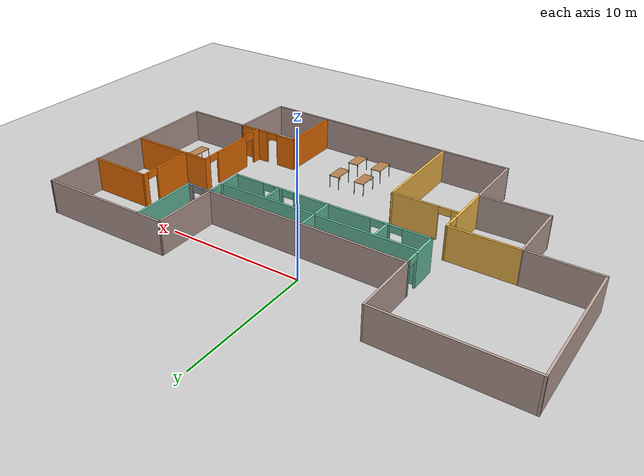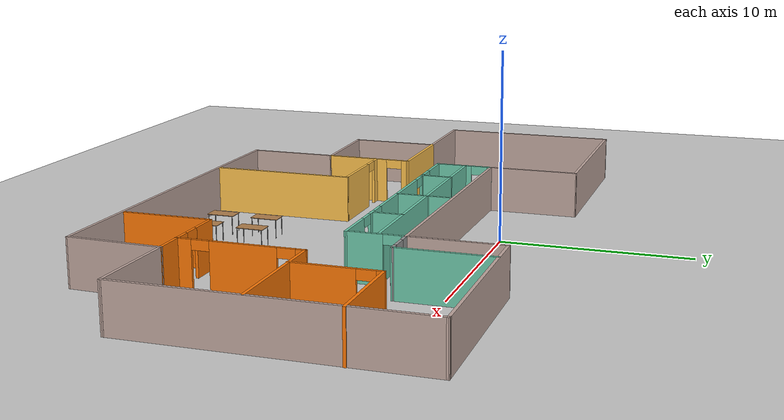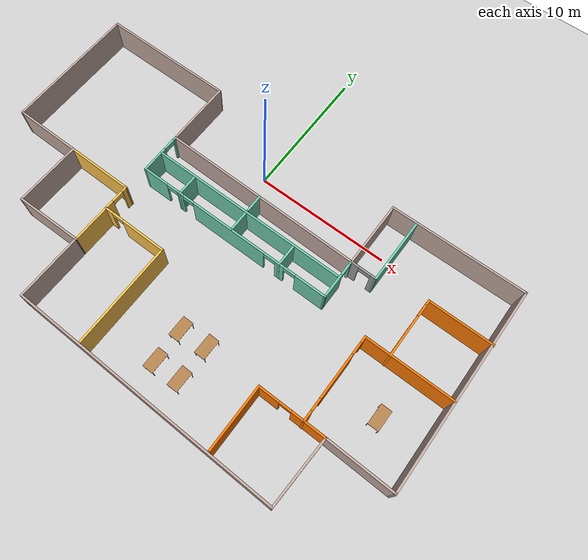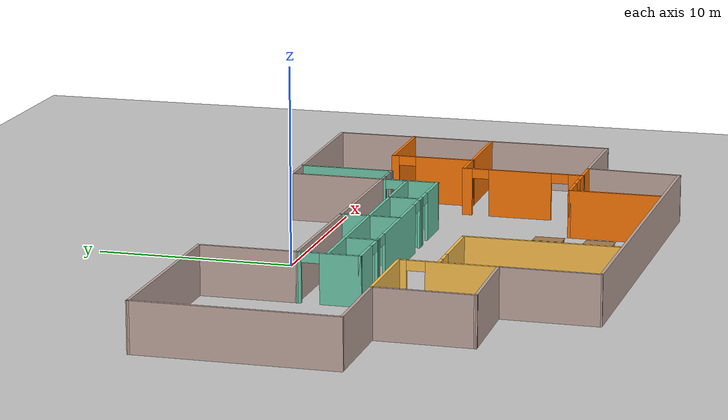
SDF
<sdf version="1.6">
 <world name="default">
  <model name="ground_plane">
   <static>1</static>
   <link name="link">
    <collision name="collision">
     <geometry><plane><normal>0 0 1</normal><size>100 100</size></plane></geometry>
     <surface>
      <contact><collide_bitmask>65535</collide_bitmask></contact>
      <friction><ode><mu>100</mu><mu2>50</mu2></ode></friction>
     </surface>
    </collision>
    <visual name="visual">
     <cast_shadows>0</cast_shadows>
     <geometry><plane><normal>0 0 1</normal><size>100 100</size></plane></geometry>
     <material>
      <script><uri>file://media/materials/scripts/gazebo.material</uri><name>Gazebo/Grey</name></script>
     </material>
    </visual>
   </link>
  </model>
  <model name="Building">
   <pose>1.3137 -7.11076 0 0 -0 0</pose>
   <link name="Wall_0">
    <collision name="Wall_0_Collision">
     <geometry><box><size>10 0.15 2.5</size></box></geometry>
     <pose>0 0 1.25 0 -0 0</pose>
    </collision>
    <visual name="Wall_0_Visual">
     <pose>0 0 1.25 0 -0 0</pose>
     <geometry><box><size>10 0.15 2.5</size></box></geometry>
     <material>
      <script><uri>file://media/materials/scripts/gazebo.material</uri><name>Gazebo/Grey</name></script>
      <ambient>0.760784 0.662745 0.627451 1</ambient>
     </material>
     <meta><layer>0</layer></meta>
    </visual>
    <pose>-12.3733 9.85668 0 0 0 -0.001793</pose>
   </link>
   <link name="Wall_1">
    <collision name="Wall_1_Collision">
     <geometry><box><size>5 0.15 2.5</size></box></geometry>
     <pose>0 0 1.25 0 -0 0</pose>
    </collision>
    <visual name="Wall_1_Visual">
     <pose>0 0 1.25 0 -0 0</pose>
     <geometry><box><size>5 0.15 2.5</size></box></geometry>
     <material>
      <script><uri>file://media/materials/scripts/gazebo.material</uri><name>Gazebo/Grey</name></script>
      <ambient>0.760784 0.662745 0.627451 1</ambient>
     </material>
     <meta><layer>0</layer></meta>
    </visual>
    <pose>-7.44769 7.42291 0 0 0 -1.57056</pose>
   </link>
   <link name="Wall_10">
    <collision name="Wall_10_Collision">
     <geometry><box><size>4.99971 0.15 2.5</size></box></geometry>
     <pose>0 0 1.25 0 -0 0</pose>
    </collision>
    <visual name="Wall_10_Visual">
     <pose>0 0 1.25 0 -0 0</pose>
     <geometry><box><size>4.99971 0.15 2.5</size></box></geometry>
     <material>
      <script><uri>file://media/materials/scripts/gazebo.material</uri><name>Gazebo/Grey</name></script>
      <ambient>0.760784 0.662745 0.627451 1</ambient>
     </material>
     <meta><layer>0</layer></meta>
    </visual>
    <pose>-10.0229 -4.78917 0 0 0 -3.1229</pose>
   </link>
   <link name="Wall_11">
    <collision name="Wall_11_Collision">
     <geometry><box><size>5 0.15 2.5</size></box></geometry>
     <pose>0 0 1.25 0 -0 0</pose>
    </collision>
    <visual name="Wall_11_Visual">
     <pose>0 0 1.25 0 -0 0</pose>
     <geometry><box><size>5 0.15 2.5</size></box></geometry>
     <material>
      <script><uri>file://media/materials/scripts/gazebo.material</uri><name>Gazebo/Grey</name></script>
      <ambient>0.760784 0.662745 0.627451 1</ambient>
     </material>
     <meta><layer>0</layer></meta>
    </visual>
    <pose>-12.4242 -2.40949 0 0 -0 1.56126</pose>
   </link>
   <link name="Wall_12">
    <collision name="Wall_12_Collision">
     <geometry><box><size>5 0.15 2.5</size></box></geometry>
     <pose>0 0 1.25 0 -0 0</pose>
    </collision>
    <visual name="Wall_12_Visual">
     <pose>0 0 1.25 0 -0 0</pose>
     <geometry><box><size>5 0.15 2.5</size></box></geometry>
     <material>
      <script><uri>file://media/materials/scripts/gazebo.material</uri><name>Gazebo/Grey</name></script>
      <ambient>0.760784 0.662745 0.627451 1</ambient>
     </material>
     <meta><layer>0</layer></meta>
    </visual>
    <pose>-14.826 0.015509 0 0 -0 3.14159</pose>
   </link>
   <link name="Wall_13">
    <collision name="Wall_13_Collision">
     <geometry><box><size>10.001 0.15 2.5</size></box></geometry>
     <pose>0 0 1.25 0 -0 0</pose>
    </collision>
    <visual name="Wall_13_Visual">
     <pose>0 0 1.25 0 -0 0</pose>
     <geometry><box><size>10.001 0.15 2.5</size></box></geometry>
     <material>
      <script><uri>file://media/materials/scripts/gazebo.material</uri><name>Gazebo/Grey</name></script>
      <ambient>0.760784 0.662745 0.627451 1</ambient>
     </material>
     <meta><layer>0</layer></meta>
    </visual>
    <pose>-17.2978 4.94051 0 0 -0 1.57089</pose>
   </link>
   <link name="Wall_15">
    <collision name="Wall_15_Collision">
     <geometry><box><size>5 0.15 2.5</size></box></geometry>
     <pose>0 0 1.25 0 -0 0</pose>
    </collision>
    <visual name="Wall_15_Visual">
     <pose>0 0 1.25 0 -0 0</pose>
     <geometry><box><size>5 0.15 2.5</size></box></geometry>
     <material>
      <script><uri>file://media/materials/scripts/gazebo.material</uri><name>Gazebo/Grey</name></script>
      <ambient>1 0.764706 0.305882 1</ambient>
     </material>
     <meta><layer>0</layer></meta>
    </visual>
    <pose>-9.97604 0.015509 0 0 -0 0</pose>
   </link>
   <link name="Wall_16">
    <pose>-7.57474 -2.36417 0 0 0 -1.58075</pose>
    <visual name="Wall_16_Visual_0">
     <pose>-2.22457 0 1.25 0 -0 0</pose>
     <geometry><box><size>0.460463 0.15 2.5</size></box></geometry>
     <material>
      <script><uri>file://media/materials/scripts/gazebo.material</uri><name>Gazebo/Grey</name></script>
      <ambient>1 0.764706 0.305882 1</ambient>
     </material>
     <meta><layer>0</layer></meta>
    </visual>
    <collision name="Wall_16_Collision_0">
     <geometry><box><size>0.460463 0.15 2.5</size></box></geometry>
     <pose>-2.22457 0 1.25 0 -0 0</pose>
    </collision>
    <visual name="Wall_16_Visual_1">
     <pose>0.680232 0 1.25 0 -0 0</pose>
     <geometry><box><size>3.54913 0.15 2.5</size></box></geometry>
     <material>
      <script><uri>file://media/materials/scripts/gazebo.material</uri><name>Gazebo/Grey</name></script>
      <ambient>1 0.764706 0.305882 1</ambient>
     </material>
     <meta><layer>0</layer></meta>
    </visual>
    <collision name="Wall_16_Collision_1">
     <geometry><box><size>3.54913 0.15 2.5</size></box></geometry>
     <pose>0.680232 0 1.25 0 -0 0</pose>
    </collision>
    <visual name="Wall_16_Visual_2">
     <pose>-1.54433 0 2.25 0 -0 0</pose>
     <geometry><box><size>0.9 0.15 0.5</size></box></geometry>
     <material>
      <script><uri>file://media/materials/scripts/gazebo.material</uri><name>Gazebo/Grey</name></script>
      <ambient>1 0.764706 0.305882 1</ambient>
     </material>
     <meta><layer>0</layer></meta>
    </visual>
    <collision name="Wall_16_Collision_2">
     <geometry><box><size>0.9 0.15 0.5</size></box></geometry>
     <pose>-1.54433 0 2.25 0 -0 0</pose>
    </collision>
   </link>
   <link name="Wall_18">
    <pose>-5.11415 -1.91143 0 0 -0 0</pose>
    <visual name="Wall_18_Visual_0">
     <pose>-2.18036 0 1.25 0 -0 0</pose>
     <geometry><box><size>0.639275 0.15 2.5</size></box></geometry>
     <material>
      <script><uri>file://media/materials/scripts/gazebo.material</uri><name>Gazebo/Grey</name></script>
      <ambient>1 0.764706 0.305882 1</ambient>
     </material>
     <meta><layer>0</layer></meta>
    </visual>
    <collision name="Wall_18_Collision_0">
     <geometry><box><size>0.639275 0.15 2.5</size></box></geometry>
     <pose>-2.18036 0 1.25 0 -0 0</pose>
    </collision>
    <visual name="Wall_18_Visual_1">
     <pose>0.769638 0 1.25 0 -0 0</pose>
     <geometry><box><size>3.46073 0.15 2.5</size></box></geometry>
     <material>
      <script><uri>file://media/materials/scripts/gazebo.material</uri><name>Gazebo/Grey</name></script>
      <ambient>1 0.764706 0.305882 1</ambient>
     </material>
     <meta><layer>0</layer></meta>
    </visual>
    <collision name="Wall_18_Collision_1">
     <geometry><box><size>3.46073 0.15 2.5</size></box></geometry>
     <pose>0.769638 0 1.25 0 -0 0</pose>
    </collision>
    <visual name="Wall_18_Visual_2">
     <pose>-1.41073 0 2.25 0 -0 0</pose>
     <geometry><box><size>0.9 0.15 0.5</size></box></geometry>
     <material>
      <script><uri>file://media/materials/scripts/gazebo.material</uri><name>Gazebo/Grey</name></script>
      <ambient>1 0.764706 0.305882 1</ambient>
     </material>
     <meta><layer>0</layer></meta>
    </visual>
    <collision name="Wall_18_Collision_2">
     <geometry><box><size>0.9 0.15 0.5</size></box></geometry>
     <pose>-1.41073 0 2.25 0 -0 0</pose>
    </collision>
   </link>
   <link name="Wall_19">
    <collision name="Wall_19_Collision">
     <geometry><box><size>7.75 0.15 2.5</size></box></geometry>
     <pose>0 0 1.25 0 -0 0</pose>
    </collision>
    <visual name="Wall_19_Visual">
     <pose>0 0 1.25 0 -0 0</pose>
     <geometry><box><size>7.75 0.15 2.5</size></box></geometry>
     <material>
      <script><uri>file://media/materials/scripts/gazebo.material</uri><name>Gazebo/Grey</name></script>
      <ambient>1 0.764706 0.305882 1</ambient>
     </material>
     <meta><layer>0</layer></meta>
    </visual>
    <pose>-2.68915 -5.71143 0 0 0 -1.5708</pose>
   </link>
   <link name="Wall_2">
    <collision name="Wall_2_Collision">
     <geometry><box><size>15 0.15 2.5</size></box></geometry>
     <pose>0 0 1.25 0 -0 0</pose>
    </collision>
    <visual name="Wall_2_Visual">
     <pose>0 0 1.25 0 -0 0</pose>
     <geometry><box><size>15 0.15 2.5</size></box></geometry>
     <material>
      <script><uri>file://media/materials/scripts/gazebo.material</uri><name>Gazebo/Grey</name></script>
      <ambient>0.760784 0.662745 0.627451 1</ambient>
     </material>
     <meta><layer>0</layer></meta>
    </visual>
    <pose>-0.022584 4.91485 0 0 0 -0.011195</pose>
   </link>
   <link name="Wall_21">
    <pose>9.97569 -5.01695 0 0 -0 3.14159</pose>
    <visual name="Wall_21_Visual_0">
     <pose>-1.23973 0 1.25 0 -0 0</pose>
     <geometry><box><size>2.52055 0.15 2.5</size></box></geometry>
     <material>
      <script><uri>file://media/materials/scripts/gazebo.material</uri><name>Gazebo/Grey</name></script>
      <ambient>0.996078 0.47451 0.0196078 1</ambient>
     </material>
     <meta><layer>0</layer></meta>
    </visual>
    <collision name="Wall_21_Collision_0">
     <geometry><box><size>2.52055 0.15 2.5</size></box></geometry>
     <pose>-1.23973 0 1.25 0 -0 0</pose>
    </collision>
    <visual name="Wall_21_Visual_1">
     <pose>1.71027 0 1.25 0 -0 0</pose>
     <geometry><box><size>1.57945 0.15 2.5</size></box></geometry>
     <material>
      <script><uri>file://media/materials/scripts/gazebo.material</uri><name>Gazebo/Grey</name></script>
      <ambient>0.996078 0.47451 0.0196078 1</ambient>
     </material>
     <meta><layer>0</layer></meta>
    </visual>
    <collision name="Wall_21_Collision_1">
     <geometry><box><size>1.57945 0.15 2.5</size></box></geometry>
     <pose>1.71027 0 1.25 0 -0 0</pose>
    </collision>
    <visual name="Wall_21_Visual_2">
     <pose>0.470546 0 2.25 0 -0 0</pose>
     <geometry><box><size>0.9 0.15 0.5</size></box></geometry>
     <material>
      <script><uri>file://media/materials/scripts/gazebo.material</uri><name>Gazebo/Grey</name></script>
      <ambient>0.996078 0.47451 0.0196078 1</ambient>
     </material>
     <meta><layer>0</layer></meta>
    </visual>
    <collision name="Wall_21_Collision_2">
     <geometry><box><size>0.9 0.15 0.5</size></box></geometry>
     <pose>0.470546 0 2.25 0 -0 0</pose>
    </collision>
   </link>
   <link name="Wall_22">
    <collision name="Wall_22_Collision">
     <geometry><box><size>4.75 0.15 2.5</size></box></geometry>
     <pose>0 0 1.25 0 -0 0</pose>
    </collision>
    <visual name="Wall_22_Visual">
     <pose>0 0 1.25 0 -0 0</pose>
     <geometry><box><size>4.75 0.15 2.5</size></box></geometry>
     <material>
      <script><uri>file://media/materials/scripts/gazebo.material</uri><name>Gazebo/Grey</name></script>
      <ambient>0.996078 0.47451 0.0196078 1</ambient>
     </material>
     <meta><layer>0</layer></meta>
    </visual>
    <pose>7.55069 -7.31695 0 0 0 -1.5708</pose>
   </link>
   <link name="Wall_24">
    <pose>-7.44712 3.44797 0 0 0 -1.5708</pose>
    <visual name="Wall_24_Visual_0">
     <pose>-1.47429 0 1.25 0 -0 0</pose>
     <geometry><box><size>0.301423 0.15 2.5</size></box></geometry>
     <material>
      <script><uri>file://media/materials/scripts/gazebo.material</uri><name>Gazebo/Grey</name></script>
      <ambient>0.435294 0.796078 0.67451 1</ambient>
     </material>
     <meta><layer>0</layer></meta>
    </visual>
    <collision name="Wall_24_Collision_0">
     <geometry><box><size>0.301423 0.15 2.5</size></box></geometry>
     <pose>-1.47429 0 1.25 0 -0 0</pose>
    </collision>
    <visual name="Wall_24_Visual_1">
     <pose>0.600711 0 1.25 0 -0 0</pose>
     <geometry><box><size>2.04858 0.15 2.5</size></box></geometry>
     <material>
      <script><uri>file://media/materials/scripts/gazebo.material</uri><name>Gazebo/Grey</name></script>
      <ambient>0.435294 0.796078 0.67451 1</ambient>
     </material>
     <meta><layer>0</layer></meta>
    </visual>
    <collision name="Wall_24_Collision_1">
     <geometry><box><size>2.04858 0.15 2.5</size></box></geometry>
     <pose>0.600711 0 1.25 0 -0 0</pose>
    </collision>
    <visual name="Wall_24_Visual_2">
     <pose>-0.873577 0 2.25 0 -0 0</pose>
     <geometry><box><size>0.9 0.15 0.5</size></box></geometry>
     <material>
      <script><uri>file://media/materials/scripts/gazebo.material</uri><name>Gazebo/Grey</name></script>
      <ambient>0.435294 0.796078 0.67451 1</ambient>
     </material>
     <meta><layer>0</layer></meta>
    </visual>
    <collision name="Wall_24_Collision_2">
     <geometry><box><size>0.9 0.15 0.5</size></box></geometry>
     <pose>-0.873577 0 2.25 0 -0 0</pose>
    </collision>
   </link>
   <link name="Wall_25">
    <pose>-0.022119 1.89797 0 0 -0 0</pose>
    <visual name="Wall_25_Visual_0">
     <pose>-6.49636 0 1.25 0 -0 0</pose>
     <geometry><box><size>2.00728 0.15 2.5</size></box></geometry>
     <material>
      <script><uri>file://media/materials/scripts/gazebo.material</uri><name>Gazebo/Grey</name></script>
      <ambient>0.435294 0.796078 0.67451 1</ambient>
     </material>
     <meta><layer>0</layer></meta>
    </visual>
    <collision name="Wall_25_Collision_0">
     <geometry><box><size>2.00728 0.15 2.5</size></box></geometry>
     <pose>-6.49636 0 1.25 0 -0 0</pose>
    </collision>
    <visual name="Wall_25_Visual_1">
     <pose>-4.35832 0 1.25 0 -0 0</pose>
     <geometry><box><size>0.468788 0.15 2.5</size></box></geometry>
     <material>
      <script><uri>file://media/materials/scripts/gazebo.material</uri><name>Gazebo/Grey</name></script>
      <ambient>0.435294 0.796078 0.67451 1</ambient>
     </material>
     <meta><layer>0</layer></meta>
    </visual>
    <collision name="Wall_25_Collision_1">
     <geometry><box><size>0.468788 0.15 2.5</size></box></geometry>
     <pose>-4.35832 0 1.25 0 -0 0</pose>
    </collision>
    <visual name="Wall_25_Visual_2">
     <pose>-0.282378 0 1.25 0 -0 0</pose>
     <geometry><box><size>5.8831 0.15 2.5</size></box></geometry>
     <material>
      <script><uri>file://media/materials/scripts/gazebo.material</uri><name>Gazebo/Grey</name></script>
      <ambient>0.435294 0.796078 0.67451 1</ambient>
     </material>
     <meta><layer>0</layer></meta>
    </visual>
    <collision name="Wall_25_Collision_2">
     <geometry><box><size>5.8831 0.15 2.5</size></box></geometry>
     <pose>-0.282378 0 1.25 0 -0 0</pose>
    </collision>
    <visual name="Wall_25_Visual_3">
     <pose>3.90003 0 1.25 0 -0 0</pose>
     <geometry><box><size>0.68171 0.15 2.5</size></box></geometry>
     <material>
      <script><uri>file://media/materials/scripts/gazebo.material</uri><name>Gazebo/Grey</name></script>
      <ambient>0.435294 0.796078 0.67451 1</ambient>
     </material>
     <meta><layer>0</layer></meta>
    </visual>
    <collision name="Wall_25_Collision_3">
     <geometry><box><size>0.68171 0.15 2.5</size></box></geometry>
     <pose>3.90003 0 1.25 0 -0 0</pose>
    </collision>
    <visual name="Wall_25_Visual_4">
     <pose>6.32044 0 1.25 0 -0 0</pose>
     <geometry><box><size>2.35912 0.15 2.5</size></box></geometry>
     <material>
      <script><uri>file://media/materials/scripts/gazebo.material</uri><name>Gazebo/Grey</name></script>
      <ambient>0.435294 0.796078 0.67451 1</ambient>
     </material>
     <meta><layer>0</layer></meta>
    </visual>
    <collision name="Wall_25_Collision_4">
     <geometry><box><size>2.35912 0.15 2.5</size></box></geometry>
     <pose>6.32044 0 1.25 0 -0 0</pose>
    </collision>
    <visual name="Wall_25_Visual_5">
     <pose>-5.04272 0 2.25 0 -0 0</pose>
     <geometry><box><size>0.9 0.15 0.5</size></box></geometry>
     <material>
      <script><uri>file://media/materials/scripts/gazebo.material</uri><name>Gazebo/Grey</name></script>
      <ambient>0.435294 0.796078 0.67451 1</ambient>
     </material>
     <meta><layer>0</layer></meta>
    </visual>
    <collision name="Wall_25_Collision_5">
     <geometry><box><size>0.9 0.15 0.5</size></box></geometry>
     <pose>-5.04272 0 2.25 0 -0 0</pose>
    </collision>
    <visual name="Wall_25_Visual_6">
     <pose>-3.67393 0 2.25 0 -0 0</pose>
     <geometry><box><size>0.9 0.15 0.5</size></box></geometry>
     <material>
      <script><uri>file://media/materials/scripts/gazebo.material</uri><name>Gazebo/Grey</name></script>
      <ambient>0.435294 0.796078 0.67451 1</ambient>
     </material>
     <meta><layer>0</layer></meta>
    </visual>
    <collision name="Wall_25_Collision_6">
     <geometry><box><size>0.9 0.15 0.5</size></box></geometry>
     <pose>-3.67393 0 2.25 0 -0 0</pose>
    </collision>
    <visual name="Wall_25_Visual_7">
     <pose>3.10917 0 2.25 0 -0 0</pose>
     <geometry><box><size>0.9 0.15 0.5</size></box></geometry>
     <material>
      <script><uri>file://media/materials/scripts/gazebo.material</uri><name>Gazebo/Grey</name></script>
      <ambient>0.435294 0.796078 0.67451 1</ambient>
     </material>
     <meta><layer>0</layer></meta>
    </visual>
    <collision name="Wall_25_Collision_7">
     <geometry><box><size>0.9 0.15 0.5</size></box></geometry>
     <pose>3.10917 0 2.25 0 -0 0</pose>
    </collision>
    <visual name="Wall_25_Visual_8">
     <pose>4.69088 0 2.25 0 -0 0</pose>
     <geometry><box><size>0.9 0.15 0.5</size></box></geometry>
     <material>
      <script><uri>file://media/materials/scripts/gazebo.material</uri><name>Gazebo/Grey</name></script>
      <ambient>0.435294 0.796078 0.67451 1</ambient>
     </material>
     <meta><layer>0</layer></meta>
    </visual>
    <collision name="Wall_25_Collision_8">
     <geometry><box><size>0.9 0.15 0.5</size></box></geometry>
     <pose>4.69088 0 2.25 0 -0 0</pose>
    </collision>
   </link>
   <link name="Wall_26">
    <pose>7.40242 3.36485 0 0 -0 1.57111</pose>
    <visual name="Wall_26_Visual_0">
     <pose>-0.593608 0 1.25 0 -0 0</pose>
     <geometry><box><size>1.89655 0.15 2.5</size></box></geometry>
     <material>
      <script><uri>file://media/materials/scripts/gazebo.material</uri><name>Gazebo/Grey</name></script>
      <ambient>0.435294 0.796078 0.67451 1</ambient>
     </material>
     <meta><layer>0</layer></meta>
    </visual>
    <collision name="Wall_26_Collision_0">
     <geometry><box><size>1.89655 0.15 2.5</size></box></geometry>
     <pose>-0.593608 0 1.25 0 -0 0</pose>
    </collision>
    <visual name="Wall_26_Visual_1">
     <pose>1.39827 0 1.25 0 -0 0</pose>
     <geometry><box><size>0.287215 0.15 2.5</size></box></geometry>
     <material>
      <script><uri>file://media/materials/scripts/gazebo.material</uri><name>Gazebo/Grey</name></script>
      <ambient>0.435294 0.796078 0.67451 1</ambient>
     </material>
     <meta><layer>0</layer></meta>
    </visual>
    <collision name="Wall_26_Collision_1">
     <geometry><box><size>0.287215 0.15 2.5</size></box></geometry>
     <pose>1.39827 0 1.25 0 -0 0</pose>
    </collision>
    <visual name="Wall_26_Visual_2">
     <pose>0.804666 0 2.25 0 -0 0</pose>
     <geometry><box><size>0.9 0.15 0.5</size></box></geometry>
     <material>
      <script><uri>file://media/materials/scripts/gazebo.material</uri><name>Gazebo/Grey</name></script>
      <ambient>0.435294 0.796078 0.67451 1</ambient>
     </material>
     <meta><layer>0</layer></meta>
    </visual>
    <collision name="Wall_26_Collision_2">
     <geometry><box><size>0.9 0.15 0.5</size></box></geometry>
     <pose>0.804666 0 2.25 0 -0 0</pose>
    </collision>
   </link>
   <link name="Wall_28">
    <collision name="Wall_28_Collision">
     <geometry><box><size>14.75 0.15 2.5</size></box></geometry>
     <pose>0 0 1.25 0 -0 0</pose>
    </collision>
    <visual name="Wall_28_Visual">
     <pose>0 0 1.25 0 -0 0</pose>
     <geometry><box><size>14.75 0.15 2.5</size></box></geometry>
     <material>
      <script><uri>file://media/materials/scripts/gazebo.material</uri><name>Gazebo/Grey</name></script>
      <ambient>0.435294 0.796078 0.67451 1</ambient>
     </material>
     <meta><layer>0</layer></meta>
    </visual>
    <pose>-0.074889 3.49771 0 0 -0 0</pose>
   </link>
   <link name="Wall_3">
    <collision name="Wall_3_Collision">
     <geometry><box><size>4.977 0.15 2.5</size></box></geometry>
     <pose>0 0 1.25 0 -0 0</pose>
    </collision>
    <visual name="Wall_3_Visual">
     <pose>0 0 1.25 0 -0 0</pose>
     <geometry><box><size>4.977 0.15 2.5</size></box></geometry>
     <material>
      <script><uri>file://media/materials/scripts/gazebo.material</uri><name>Gazebo/Grey</name></script>
      <ambient>0.760784 0.662745 0.627451 1</ambient>
     </material>
     <meta><layer>0</layer></meta>
    </visual>
    <pose>7.40161 7.24525 0 0 -0 1.57094</pose>
   </link>
   <link name="Wall_30">
    <collision name="Wall_30_Collision">
     <geometry><box><size>1.5 0.15 2.5</size></box></geometry>
     <pose>0 0 1.25 0 -0 0</pose>
    </collision>
    <visual name="Wall_30_Visual">
     <pose>0 0 1.25 0 -0 0</pose>
     <geometry><box><size>1.5 0.15 2.5</size></box></geometry>
     <material>
      <script><uri>file://media/materials/scripts/gazebo.material</uri><name>Gazebo/Grey</name></script>
      <ambient>0.435294 0.796078 0.67451 1</ambient>
     </material>
     <meta><layer>0</layer></meta>
    </visual>
    <pose>-0.057706 4.22986 0 0 0 -1.5708</pose>
   </link>
   <link name="Wall_32">
    <collision name="Wall_32_Collision">
     <geometry><box><size>1.75 0.15 2.5</size></box></geometry>
     <pose>0 0 1.25 0 -0 0</pose>
    </collision>
    <visual name="Wall_32_Visual">
     <pose>0 0 1.25 0 -0 0</pose>
     <geometry><box><size>1.75 0.15 2.5</size></box></geometry>
     <material>
      <script><uri>file://media/materials/scripts/gazebo.material</uri><name>Gazebo/Grey</name></script>
      <ambient>0.435294 0.796078 0.67451 1</ambient>
     </material>
     <meta><layer>0</layer></meta>
    </visual>
    <pose>-4.41987 2.69771 0 0 0 -1.5708</pose>
   </link>
   <link name="Wall_36">
    <collision name="Wall_36_Collision">
     <geometry><box><size>1.75 0.15 2.5</size></box></geometry>
     <pose>0 0 1.25 0 -0 0</pose>
    </collision>
    <visual name="Wall_36_Visual">
     <pose>0 0 1.25 0 -0 0</pose>
     <geometry><box><size>1.75 0.15 2.5</size></box></geometry>
     <material>
      <script><uri>file://media/materials/scripts/gazebo.material</uri><name>Gazebo/Grey</name></script>
      <ambient>0.435294 0.796078 0.67451 1</ambient>
     </material>
     <meta><layer>0</layer></meta>
    </visual>
    <pose>-0.057706 2.75486 0 0 0 -1.5708</pose>
   </link>
   <link name="Wall_38">
    <collision name="Wall_38_Collision">
     <geometry><box><size>1.75 0.15 2.5</size></box></geometry>
     <pose>0 0 1.25 0 -0 0</pose>
    </collision>
    <visual name="Wall_38_Visual">
     <pose>0 0 1.25 0 -0 0</pose>
     <geometry><box><size>1.75 0.15 2.5</size></box></geometry>
     <material>
      <script><uri>file://media/materials/scripts/gazebo.material</uri><name>Gazebo/Grey</name></script>
      <ambient>0.435294 0.796078 0.67451 1</ambient>
     </material>
     <meta><layer>0</layer></meta>
    </visual>
    <pose>3.84532 2.68439 0 0 0 -1.5708</pose>
   </link>
   <link name="Wall_4">
    <collision name="Wall_4_Collision">
     <geometry><box><size>10 0.15 2.5</size></box></geometry>
     <pose>0 0 1.25 0 -0 0</pose>
    </collision>
    <visual name="Wall_4_Visual">
     <pose>0 0 1.25 0 -0 0</pose>
     <geometry><box><size>10 0.15 2.5</size></box></geometry>
     <material>
      <script><uri>file://media/materials/scripts/gazebo.material</uri><name>Gazebo/Grey</name></script>
      <ambient>0.760784 0.662745 0.627451 1</ambient>
     </material>
     <meta><layer>0</layer></meta>
    </visual>
    <pose>12.3258 9.71227 0 0 -0 0.010864</pose>
   </link>
   <link name="Wall_40">
    <collision name="Wall_40_Collision">
     <geometry><box><size>5 0.15 2.5</size></box></geometry>
     <pose>0 0 1.25 0 -0 0</pose>
    </collision>
    <visual name="Wall_40_Visual">
     <pose>0 0 1.25 0 -0 0</pose>
     <geometry><box><size>5 0.15 2.5</size></box></geometry>
     <material>
      <script><uri>file://media/materials/scripts/gazebo.material</uri><name>Gazebo/Grey</name></script>
      <ambient>0.435294 0.796078 0.67451 1</ambient>
     </material>
     <meta><layer>0</layer></meta>
    </visual>
    <pose>9.26532 7.23939 0 0 0 -1.5708</pose>
   </link>
   <link name="Wall_41">
    <pose>8.33363 4.82306 0 0 -0 3.13228</pose>
    <visual name="Wall_41_Visual_0">
     <pose>-0.781737 0 1.25 0 -0 0</pose>
     <geometry><box><size>0.449972 0.15 2.5</size></box></geometry>
     <material>
      <script><uri>file://media/materials/scripts/gazebo.material</uri><name>Gazebo/Grey</name></script>
      <ambient>1 1 1 1</ambient>
     </material>
     <meta><layer>0</layer></meta>
    </visual>
    <collision name="Wall_41_Collision_0">
     <geometry><box><size>0.449972 0.15 2.5</size></box></geometry>
     <pose>-0.781737 0 1.25 0 -0 0</pose>
    </collision>
    <visual name="Wall_41_Visual_1">
     <pose>0.674986 0 1.25 0 -0 0</pose>
     <geometry><box><size>0.663474 0.15 2.5</size></box></geometry>
     <material>
      <script><uri>file://media/materials/scripts/gazebo.material</uri><name>Gazebo/Grey</name></script>
      <ambient>1 1 1 1</ambient>
     </material>
     <meta><layer>0</layer></meta>
    </visual>
    <collision name="Wall_41_Collision_1">
     <geometry><box><size>0.663474 0.15 2.5</size></box></geometry>
     <pose>0.674986 0 1.25 0 -0 0</pose>
    </collision>
    <visual name="Wall_41_Visual_2">
     <pose>-0.106751 0 2.25 0 -0 0</pose>
     <geometry><box><size>0.9 0.15 0.5</size></box></geometry>
     <material>
      <script><uri>file://media/materials/scripts/gazebo.material</uri><name>Gazebo/Grey</name></script>
      <ambient>1 1 1 1</ambient>
     </material>
     <meta><layer>0</layer></meta>
    </visual>
    <collision name="Wall_41_Collision_2">
     <geometry><box><size>0.9 0.15 0.5</size></box></geometry>
     <pose>-0.106751 0 2.25 0 -0 0</pose>
    </collision>
   </link>
   <link name="Wall_43">
    <pose>10.8479 -1.87139 0 0 -0 1.5708</pose>
    <visual name="Wall_43_Visual_0">
     <pose>-2.82948 0 1.25 0 -0 0</pose>
     <geometry><box><size>0.841047 0.15 2.5</size></box></geometry>
     <material>
      <script><uri>file://media/materials/scripts/gazebo.material</uri><name>Gazebo/Grey</name></script>
      <ambient>0.996078 0.47451 0.0196078 1</ambient>
     </material>
     <meta><layer>0</layer></meta>
    </visual>
    <collision name="Wall_43_Collision_0">
     <geometry><box><size>0.841047 0.15 2.5</size></box></geometry>
     <pose>-2.82948 0 1.25 0 -0 0</pose>
    </collision>
    <visual name="Wall_43_Visual_1">
     <pose>0.155063 0 1.25 0 -0 0</pose>
     <geometry><box><size>3.32803 0.15 2.5</size></box></geometry>
     <material>
      <script><uri>file://media/materials/scripts/gazebo.material</uri><name>Gazebo/Grey</name></script>
      <ambient>0.996078 0.47451 0.0196078 1</ambient>
     </material>
     <meta><layer>0</layer></meta>
    </visual>
    <collision name="Wall_43_Collision_1">
     <geometry><box><size>3.32803 0.15 2.5</size></box></geometry>
     <pose>0.155063 0 1.25 0 -0 0</pose>
    </collision>
    <visual name="Wall_43_Visual_2">
     <pose>2.98454 0 1.25 0 -0 0</pose>
     <geometry><box><size>0.53092 0.15 2.5</size></box></geometry>
     <material>
      <script><uri>file://media/materials/scripts/gazebo.material</uri><name>Gazebo/Grey</name></script>
      <ambient>0.996078 0.47451 0.0196078 1</ambient>
     </material>
     <meta><layer>0</layer></meta>
    </visual>
    <collision name="Wall_43_Collision_2">
     <geometry><box><size>0.53092 0.15 2.5</size></box></geometry>
     <pose>2.98454 0 1.25 0 -0 0</pose>
    </collision>
    <visual name="Wall_43_Visual_3">
     <pose>-1.95895 0 2.25 0 -0 0</pose>
     <geometry><box><size>0.9 0.15 0.5</size></box></geometry>
     <material>
      <script><uri>file://media/materials/scripts/gazebo.material</uri><name>Gazebo/Grey</name></script>
      <ambient>0.996078 0.47451 0.0196078 1</ambient>
     </material>
     <meta><layer>0</layer></meta>
    </visual>
    <collision name="Wall_43_Collision_3">
     <geometry><box><size>0.9 0.15 0.5</size></box></geometry>
     <pose>-1.95895 0 2.25 0 -0 0</pose>
    </collision>
    <visual name="Wall_43_Visual_4">
     <pose>2.26908 0 2.25 0 -0 0</pose>
     <geometry><box><size>0.9 0.15 0.5</size></box></geometry>
     <material>
      <script><uri>file://media/materials/scripts/gazebo.material</uri><name>Gazebo/Grey</name></script>
      <ambient>0.996078 0.47451 0.0196078 1</ambient>
     </material>
     <meta><layer>0</layer></meta>
    </visual>
    <collision name="Wall_43_Collision_4">
     <geometry><box><size>0.9 0.15 0.5</size></box></geometry>
     <pose>2.26908 0 2.25 0 -0 0</pose>
    </collision>
   </link>
   <link name="Wall_44">
    <collision name="Wall_44_Collision">
     <geometry><box><size>6.5 0.15 2.5</size></box></geometry>
     <pose>0 0 1.25 0 -0 0</pose>
    </collision>
    <visual name="Wall_44_Visual">
     <pose>0 0 1.25 0 -0 0</pose>
     <geometry><box><size>6.5 0.15 2.5</size></box></geometry>
     <material>
      <script><uri>file://media/materials/scripts/gazebo.material</uri><name>Gazebo/Grey</name></script>
      <ambient>0.996078 0.47451 0.0196078 1</ambient>
     </material>
     <meta><layer>0</layer></meta>
    </visual>
    <pose>14.0229 1.30361 0 0 -0 0</pose>
   </link>
   <link name="Wall_46">
    <pose>12.6984 3.44428 0 0 -0 1.5708</pose>
    <visual name="Wall_46_Visual_0">
     <pose>-0.652813 0 1.25 0 -0 0</pose>
     <geometry><box><size>3.19437 0.15 2.5</size></box></geometry>
     <material>
      <script><uri>file://media/materials/scripts/gazebo.material</uri><name>Gazebo/Grey</name></script>
      <ambient>0.996078 0.47451 0.0196078 1</ambient>
     </material>
     <meta><layer>0</layer></meta>
    </visual>
    <collision name="Wall_46_Collision_0">
     <geometry><box><size>3.19437 0.15 2.5</size></box></geometry>
     <pose>-0.652813 0 1.25 0 -0 0</pose>
    </collision>
    <visual name="Wall_46_Visual_1">
     <pose>2.04719 0 1.25 0 -0 0</pose>
     <geometry><box><size>0.405627 0.15 2.5</size></box></geometry>
     <material>
      <script><uri>file://media/materials/scripts/gazebo.material</uri><name>Gazebo/Grey</name></script>
      <ambient>0.996078 0.47451 0.0196078 1</ambient>
     </material>
     <meta><layer>0</layer></meta>
    </visual>
    <collision name="Wall_46_Collision_1">
     <geometry><box><size>0.405627 0.15 2.5</size></box></geometry>
     <pose>2.04719 0 1.25 0 -0 0</pose>
    </collision>
    <visual name="Wall_46_Visual_2">
     <pose>1.39437 0 2.25 0 -0 0</pose>
     <geometry><box><size>0.9 0.15 0.5</size></box></geometry>
     <material>
      <script><uri>file://media/materials/scripts/gazebo.material</uri><name>Gazebo/Grey</name></script>
      <ambient>0.996078 0.47451 0.0196078 1</ambient>
     </material>
     <meta><layer>0</layer></meta>
    </visual>
    <collision name="Wall_46_Collision_2">
     <geometry><box><size>0.9 0.15 0.5</size></box></geometry>
     <pose>1.39437 0 2.25 0 -0 0</pose>
    </collision>
   </link>
   <link name="Wall_47">
    <collision name="Wall_47_Collision">
     <geometry><box><size>4.75 0.15 2.5</size></box></geometry>
     <pose>0 0 1.25 0 -0 0</pose>
    </collision>
    <visual name="Wall_47_Visual">
     <pose>0 0 1.25 0 -0 0</pose>
     <geometry><box><size>4.75 0.15 2.5</size></box></geometry>
     <material>
      <script><uri>file://media/materials/scripts/gazebo.material</uri><name>Gazebo/Grey</name></script>
      <ambient>0.996078 0.47451 0.0196078 1</ambient>
     </material>
     <meta><layer>0</layer></meta>
    </visual>
    <pose>14.9984 5.61928 0 0 -0 0</pose>
   </link>
   <link name="Wall_5">
    <collision name="Wall_5_Collision">
     <geometry><box><size>15 0.15 2.5</size></box></geometry>
     <pose>0 0 1.25 0 -0 0</pose>
    </collision>
    <visual name="Wall_5_Visual">
     <pose>0 0 1.25 0 -0 0</pose>
     <geometry><box><size>15 0.15 2.5</size></box></geometry>
     <material>
      <script><uri>file://media/materials/scripts/gazebo.material</uri><name>Gazebo/Grey</name></script>
      <ambient>0.760784 0.662745 0.627451 1</ambient>
     </material>
     <meta><layer>0</layer></meta>
    </visual>
    <pose>17.2503 2.34085 0 0 0 -1.5708</pose>
   </link>
   <link name="Wall_6">
    <collision name="Wall_6_Collision">
     <geometry><box><size>5 0.15 2.5</size></box></geometry>
     <pose>0 0 1.25 0 -0 0</pose>
    </collision>
    <visual name="Wall_6_Visual">
     <pose>0 0 1.25 0 -0 0</pose>
     <geometry><box><size>5 0.15 2.5</size></box></geometry>
     <material>
      <script><uri>file://media/materials/scripts/gazebo.material</uri><name>Gazebo/Grey</name></script>
      <ambient>0.760784 0.662745 0.627451 1</ambient>
     </material>
     <meta><layer>0</layer></meta>
    </visual>
    <pose>14.8255 -5.05051 0 0 -0 3.12775</pose>
   </link>
   <link name="Wall_7">
    <collision name="Wall_7_Collision">
     <geometry><box><size>5 0.15 2.5</size></box></geometry>
     <pose>0 0 1.25 0 -0 0</pose>
    </collision>
    <visual name="Wall_7_Visual">
     <pose>0 0 1.25 0 -0 0</pose>
     <geometry><box><size>5 0.15 2.5</size></box></geometry>
     <material>
      <script><uri>file://media/materials/scripts/gazebo.material</uri><name>Gazebo/Grey</name></script>
      <ambient>0.760784 0.662745 0.627451 1</ambient>
     </material>
     <meta><layer>0</layer></meta>
    </visual>
    <pose>12.3037 -7.44001 0 0 0 -1.61079</pose>
   </link>
   <link name="Wall_8">
    <collision name="Wall_8_Collision">
     <geometry><box><size>20 0.15 2.5</size></box></geometry>
     <pose>0 0 1.25 0 -0 0</pose>
    </collision>
    <visual name="Wall_8_Visual">
     <pose>0 0 1.25 0 -0 0</pose>
     <geometry><box><size>20 0.15 2.5</size></box></geometry>
     <material>
      <script><uri>file://media/materials/scripts/gazebo.material</uri><name>Gazebo/Grey</name></script>
      <ambient>0.760784 0.662745 0.627451 1</ambient>
     </material>
     <meta><layer>0</layer></meta>
    </visual>
    <pose>2.2827 -9.72813 0 0 -0 3.128</pose>
   </link>
   <link name="Wall_9">
    <collision name="Wall_9_Collision">
     <geometry><box><size>4.93835 0.15 2.5</size></box></geometry>
     <pose>0 0 1.25 0 -0 0</pose>
    </collision>
    <visual name="Wall_9_Visual">
     <pose>0 0 1.25 0 -0 0</pose>
     <geometry><box><size>4.93835 0.15 2.5</size></box></geometry>
     <material>
      <script><uri>file://media/materials/scripts/gazebo.material</uri><name>Gazebo/Grey</name></script>
      <ambient>0.760784 0.662745 0.627451 1</ambient>
     </material>
     <meta><layer>0</layer></meta>
    </visual>
    <pose>-7.61991 -7.19911 0 0 -0 1.56183</pose>
   </link>
   <static>1</static>
  </model>
  <model name="table_clone_1_clone_1">
   <static>1</static>
   <link name="link">
    <collision name="surface">
     <pose>0 0 1 0 -0 0</pose>
     <geometry><box><size>1.5 0.8 0.03</size></box></geometry>
     <surface><friction><ode><mu>0.6</mu><mu2>0.6</mu2></ode></friction></surface>
    </collision>
    <visual name="visual1">
     <pose>0 0 1 0 -0 0</pose>
     <geometry><box><size>1.5 0.8 0.03</size></box></geometry>
     <material>
      <script><uri>file://media/materials/scripts/gazebo.material</uri><name>Gazebo/Wood</name></script>
     </material>
    </visual>
    <collision name="front_left_leg">
     <pose>0.68 0.38 0.5 0 -0 0</pose>
     <geometry><cylinder><radius>0.02</radius><length>1</length></cylinder></geometry>
    </collision>
    <visual name="front_left_leg">
     <pose>0.68 0.38 0.5 0 -0 0</pose>
     <geometry><cylinder><radius>0.02</radius><length>1</length></cylinder></geometry>
     <material>
      <script><uri>file://media/materials/scripts/gazebo.material</uri><name>Gazebo/Grey</name></script>
     </material>
    </visual>
    <collision name="front_right_leg">
     <pose>0.68 -0.38 0.5 0 -0 0</pose>
     <geometry><cylinder><radius>0.02</radius><length>1</length></cylinder></geometry>
    </collision>
    <visual name="front_right_leg">
     <pose>0.68 -0.38 0.5 0 -0 0</pose>
     <geometry><cylinder><radius>0.02</radius><length>1</length></cylinder></geometry>
     <material>
      <script><uri>file://media/materials/scripts/gazebo.material</uri><name>Gazebo/Grey</name></script>
     </material>
    </visual>
    <collision name="back_right_leg">
     <pose>-0.68 -0.38 0.5 0 -0 0</pose>
     <geometry><cylinder><radius>0.02</radius><length>1</length></cylinder></geometry>
    </collision>
    <visual name="back_right_leg">
     <pose>-0.68 -0.38 0.5 0 -0 0</pose>
     <geometry><cylinder><radius>0.02</radius><length>1</length></cylinder></geometry>
     <material>
      <script><uri>file://media/materials/scripts/gazebo.material</uri><name>Gazebo/Grey</name></script>
     </material>
    </visual>
    <collision name="back_left_leg">
     <pose>-0.68 0.38 0.5 0 -0 0</pose>
     <geometry><cylinder><radius>0.02</radius><length>1</length></cylinder></geometry>
    </collision>
    <visual name="back_left_leg">
     <pose>-0.68 0.38 0.5 0 -0 0</pose>
     <geometry><cylinder><radius>0.02</radius><length>1</length></cylinder></geometry>
     <material>
      <script><uri>file://media/materials/scripts/gazebo.material</uri><name>Gazebo/Grey</name></script>
     </material>
    </visual>
   </link>
   <pose>2.555 -12.0632 -0.006617 0.010182 0.002048 1.56787</pose>
  </model>
  <model name="table_clone_1_clone_2">
   <static>1</static>
   <link name="link">
    <collision name="surface">
     <pose>0 0 1 0 -0 0</pose>
     <geometry><box><size>1.5 0.8 0.03</size></box></geometry>
     <surface><friction><ode><mu>0.6</mu><mu2>0.6</mu2></ode></friction></surface>
    </collision>
    <visual name="visual1">
     <pose>0 0 1 0 -0 0</pose>
     <geometry><box><size>1.5 0.8 0.03</size></box></geometry>
     <material>
      <script><uri>file://media/materials/scripts/gazebo.material</uri><name>Gazebo/Wood</name></script>
     </material>
    </visual>
    <collision name="front_left_leg">
     <pose>0.68 0.38 0.5 0 -0 0</pose>
     <geometry><cylinder><radius>0.02</radius><length>1</length></cylinder></geometry>
    </collision>
    <visual name="front_left_leg">
     <pose>0.68 0.38 0.5 0 -0 0</pose>
     <geometry><cylinder><radius>0.02</radius><length>1</length></cylinder></geometry>
     <material>
      <script><uri>file://media/materials/scripts/gazebo.material</uri><name>Gazebo/Grey</name></script>
     </material>
    </visual>
    <collision name="front_right_leg">
     <pose>0.68 -0.38 0.5 0 -0 0</pose>
     <geometry><cylinder><radius>0.02</radius><length>1</length></cylinder></geometry>
    </collision>
    <visual name="front_right_leg">
     <pose>0.68 -0.38 0.5 0 -0 0</pose>
     <geometry><cylinder><radius>0.02</radius><length>1</length></cylinder></geometry>
     <material>
      <script><uri>file://media/materials/scripts/gazebo.material</uri><name>Gazebo/Grey</name></script>
     </material>
    </visual>
    <collision name="back_right_leg">
     <pose>-0.68 -0.38 0.5 0 -0 0</pose>
     <geometry><cylinder><radius>0.02</radius><length>1</length></cylinder></geometry>
    </collision>
    <visual name="back_right_leg">
     <pose>-0.68 -0.38 0.5 0 -0 0</pose>
     <geometry><cylinder><radius>0.02</radius><length>1</length></cylinder></geometry>
     <material>
      <script><uri>file://media/materials/scripts/gazebo.material</uri><name>Gazebo/Grey</name></script>
     </material>
    </visual>
    <collision name="back_left_leg">
     <pose>-0.68 0.38 0.5 0 -0 0</pose>
     <geometry><cylinder><radius>0.02</radius><length>1</length></cylinder></geometry>
    </collision>
    <visual name="back_left_leg">
     <pose>-0.68 0.38 0.5 0 -0 0</pose>
     <geometry><cylinder><radius>0.02</radius><length>1</length></cylinder></geometry>
     <material>
      <script><uri>file://media/materials/scripts/gazebo.material</uri><name>Gazebo/Grey</name></script>
     </material>
    </visual>
   </link>
   <pose>2.59203 -14.5636 -0.006617 0.010182 0.002048 1.56787</pose>
  </model>
  <model name="table_clone_1_clone_3">
   <static>1</static>
   <link name="link">
    <collision name="surface">
     <pose>0 0 1 0 -0 0</pose>
     <geometry><box><size>1.5 0.8 0.03</size></box></geometry>
     <surface><friction><ode><mu>0.6</mu><mu2>0.6</mu2></ode></friction></surface>
    </collision>
    <visual name="visual1">
     <pose>0 0 1 0 -0 0</pose>
     <geometry><box><size>1.5 0.8 0.03</size></box></geometry>
     <material>
      <script><uri>file://media/materials/scripts/gazebo.material</uri><name>Gazebo/Wood</name></script>
     </material>
    </visual>
    <collision name="front_left_leg">
     <pose>0.68 0.38 0.5 0 -0 0</pose>
     <geometry><cylinder><radius>0.02</radius><length>1</length></cylinder></geometry>
    </collision>
    <visual name="front_left_leg">
     <pose>0.68 0.38 0.5 0 -0 0</pose>
     <geometry><cylinder><radius>0.02</radius><length>1</length></cylinder></geometry>
     <material>
      <script><uri>file://media/materials/scripts/gazebo.material</uri><name>Gazebo/Grey</name></script>
     </material>
    </visual>
    <collision name="front_right_leg">
     <pose>0.68 -0.38 0.5 0 -0 0</pose>
     <geometry><cylinder><radius>0.02</radius><length>1</length></cylinder></geometry>
    </collision>
    <visual name="front_right_leg">
     <pose>0.68 -0.38 0.5 0 -0 0</pose>
     <geometry><cylinder><radius>0.02</radius><length>1</length></cylinder></geometry>
     <material>
      <script><uri>file://media/materials/scripts/gazebo.material</uri><name>Gazebo/Grey</name></script>
     </material>
    </visual>
    <collision name="back_right_leg">
     <pose>-0.68 -0.38 0.5 0 -0 0</pose>
     <geometry><cylinder><radius>0.02</radius><length>1</length></cylinder></geometry>
    </collision>
    <visual name="back_right_leg">
     <pose>-0.68 -0.38 0.5 0 -0 0</pose>
     <geometry><cylinder><radius>0.02</radius><length>1</length></cylinder></geometry>
     <material>
      <script><uri>file://media/materials/scripts/gazebo.material</uri><name>Gazebo/Grey</name></script>
     </material>
    </visual>
    <collision name="back_left_leg">
     <pose>-0.68 0.38 0.5 0 -0 0</pose>
     <geometry><cylinder><radius>0.02</radius><length>1</length></cylinder></geometry>
    </collision>
    <visual name="back_left_leg">
     <pose>-0.68 0.38 0.5 0 -0 0</pose>
     <geometry><cylinder><radius>0.02</radius><length>1</length></cylinder></geometry>
     <material>
      <script><uri>file://media/materials/scripts/gazebo.material</uri><name>Gazebo/Grey</name></script>
     </material>
    </visual>
   </link>
   <pose>4.58472 -11.9558 -0.006617 0.010182 0.002048 1.56787</pose>
  </model>
  <model name="table_clone_1_clone_4">
   <static>1</static>
   <link name="link">
    <collision name="surface">
     <pose>0 0 1 0 -0 0</pose>
     <geometry><box><size>1.5 0.8 0.03</size></box></geometry>
     <surface><friction><ode><mu>0.6</mu><mu2>0.6</mu2></ode></friction></surface>
    </collision>
    <visual name="visual1">
     <pose>0 0 1 0 -0 0</pose>
     <geometry><box><size>1.5 0.8 0.03</size></box></geometry>
     <material>
      <script><uri>file://media/materials/scripts/gazebo.material</uri><name>Gazebo/Wood</name></script>
     </material>
    </visual>
    <collision name="front_left_leg">
     <pose>0.68 0.38 0.5 0 -0 0</pose>
     <geometry><cylinder><radius>0.02</radius><length>1</length></cylinder></geometry>
    </collision>
    <visual name="front_left_leg">
     <pose>0.68 0.38 0.5 0 -0 0</pose>
     <geometry><cylinder><radius>0.02</radius><length>1</length></cylinder></geometry>
     <material>
      <script><uri>file://media/materials/scripts/gazebo.material</uri><name>Gazebo/Grey</name></script>
     </material>
    </visual>
    <collision name="front_right_leg">
     <pose>0.68 -0.38 0.5 0 -0 0</pose>
     <geometry><cylinder><radius>0.02</radius><length>1</length></cylinder></geometry>
    </collision>
    <visual name="front_right_leg">
     <pose>0.68 -0.38 0.5 0 -0 0</pose>
     <geometry><cylinder><radius>0.02</radius><length>1</length></cylinder></geometry>
     <material>
      <script><uri>file://media/materials/scripts/gazebo.material</uri><name>Gazebo/Grey</name></script>
     </material>
    </visual>
    <collision name="back_right_leg">
     <pose>-0.68 -0.38 0.5 0 -0 0</pose>
     <geometry><cylinder><radius>0.02</radius><length>1</length></cylinder></geometry>
    </collision>
    <visual name="back_right_leg">
     <pose>-0.68 -0.38 0.5 0 -0 0</pose>
     <geometry><cylinder><radius>0.02</radius><length>1</length></cylinder></geometry>
     <material>
      <script><uri>file://media/materials/scripts/gazebo.material</uri><name>Gazebo/Grey</name></script>
     </material>
    </visual>
    <collision name="back_left_leg">
     <pose>-0.68 0.38 0.5 0 -0 0</pose>
     <geometry><cylinder><radius>0.02</radius><length>1</length></cylinder></geometry>
    </collision>
    <visual name="back_left_leg">
     <pose>-0.68 0.38 0.5 0 -0 0</pose>
     <geometry><cylinder><radius>0.02</radius><length>1</length></cylinder></geometry>
     <material>
      <script><uri>file://media/materials/scripts/gazebo.material</uri><name>Gazebo/Grey</name></script>
     </material>
    </visual>
   </link>
   <pose>4.53683 -14.5261 -0.006617 0.010182 0.002048 1.56787</pose>
  </model>
  <model name="table_clone_1_clone_5">
   <static>1</static>
   <link name="link">
    <collision name="surface">
     <pose>0 0 1 0 -0 0</pose>
     <geometry><box><size>1.5 0.8 0.03</size></box></geometry>
     <surface><friction><ode><mu>0.6</mu><mu2>0.6</mu2></ode></friction></surface>
    </collision>
    <visual name="visual1">
     <pose>0 0 1 0 -0 0</pose>
     <geometry><box><size>1.5 0.8 0.03</size></box></geometry>
     <material>
      <script><uri>file://media/materials/scripts/gazebo.material</uri><name>Gazebo/Wood</name></script>
     </material>
    </visual>
    <collision name="front_left_leg">
     <pose>0.68 0.38 0.5 0 -0 0</pose>
     <geometry><cylinder><radius>0.02</radius><length>1</length></cylinder></geometry>
    </collision>
    <visual name="front_left_leg">
     <pose>0.68 0.38 0.5 0 -0 0</pose>
     <geometry><cylinder><radius>0.02</radius><length>1</length></cylinder></geometry>
     <material>
      <script><uri>file://media/materials/scripts/gazebo.material</uri><name>Gazebo/Grey</name></script>
     </material>
    </visual>
    <collision name="front_right_leg">
     <pose>0.68 -0.38 0.5 0 -0 0</pose>
     <geometry><cylinder><radius>0.02</radius><length>1</length></cylinder></geometry>
    </collision>
    <visual name="front_right_leg">
     <pose>0.68 -0.38 0.5 0 -0 0</pose>
     <geometry><cylinder><radius>0.02</radius><length>1</length></cylinder></geometry>
     <material>
      <script><uri>file://media/materials/scripts/gazebo.material</uri><name>Gazebo/Grey</name></script>
     </material>
    </visual>
    <collision name="back_right_leg">
     <pose>-0.68 -0.38 0.5 0 -0 0</pose>
     <geometry><cylinder><radius>0.02</radius><length>1</length></cylinder></geometry>
    </collision>
    <visual name="back_right_leg">
     <pose>-0.68 -0.38 0.5 0 -0 0</pose>
     <geometry><cylinder><radius>0.02</radius><length>1</length></cylinder></geometry>
     <material>
      <script><uri>file://media/materials/scripts/gazebo.material</uri><name>Gazebo/Grey</name></script>
     </material>
    </visual>
    <collision name="back_left_leg">
     <pose>-0.68 0.38 0.5 0 -0 0</pose>
     <geometry><cylinder><radius>0.02</radius><length>1</length></cylinder></geometry>
    </collision>
    <visual name="back_left_leg">
     <pose>-0.68 0.38 0.5 0 -0 0</pose>
     <geometry><cylinder><radius>0.02</radius><length>1</length></cylinder></geometry>
     <material>
      <script><uri>file://media/materials/scripts/gazebo.material</uri><name>Gazebo/Grey</name></script>
     </material>
    </visual>
   </link>
   <pose>15.5981 -8.95097 -0.006617 0.010182 0.002048 1.56787</pose>
  </model>
 </world>
</sdf>
